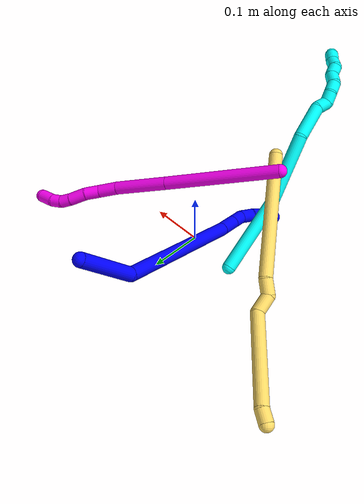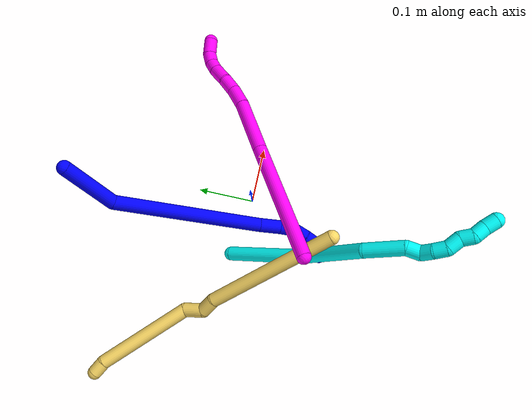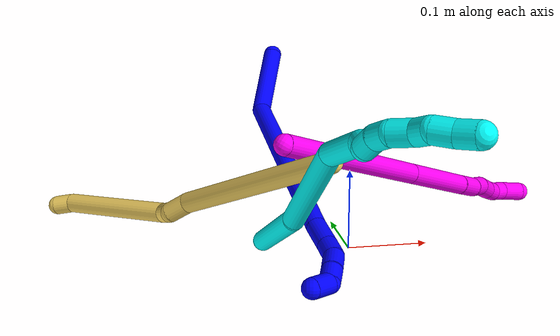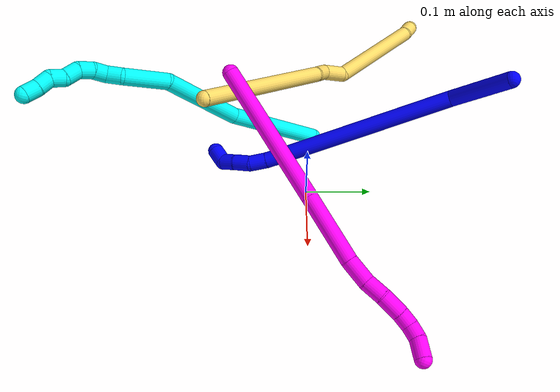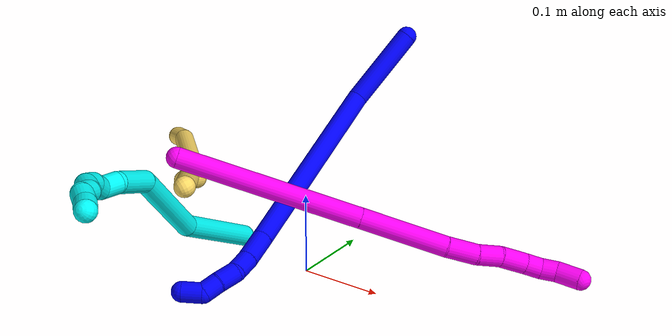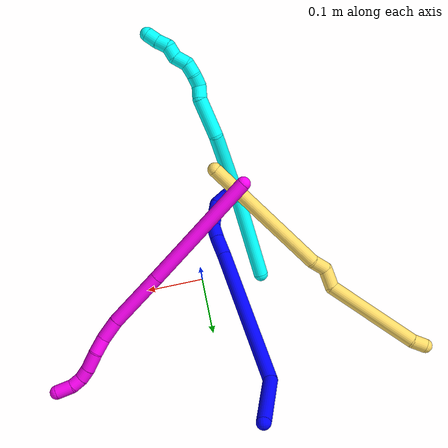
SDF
<sdf version="1.7">
 <world name="default">
  <model name="photoneo_s_sensor">
   <static>1</static>
   <pose>0 0 2 1.57079 1.57079 3.14159</pose>
   <link name="link">
    <inertial><mass>0.1</mass></inertial>
    <sensor name="sensor" type="depth">
     <update_rate>30</update_rate>
     <camera>
      <horizontal_fov>1.22</horizontal_fov>
      <image><width>1920</width><height>1200</height><format>B8G8R8</format></image>
      <clip><near>0.1</near><far>4</far></clip>
      <depth_camera><output>points</output></depth_camera>
     </camera>
     <plugin name="camera_plugin" filename="libgazebo_ros_depth_camera.so">
      <baseline>0.2</baseline>
      <alwaysOn>1</alwaysOn>
      <updateRate>0.0</updateRate>
      <cameraName>camera_ir</cameraName>
      <imageTopicName>/camera/color/image_raw</imageTopicName>
      <cameraInfoTopicName>/camera/color/camera_info</cameraInfoTopicName>
      <depthImageTopicName>/camera/depth/image_raw</depthImageTopicName>
      <depthImageCameraInfoTopicName>/camera/depth/camera_info</depthImageCameraInfoTopicName>
      <pointCloudTopicName>/camera/depth/points</pointCloudTopicName>
      <frameName>fr_optical</frameName>
      <pointCloudCutoff>0.1</pointCloudCutoff>
      <pointCloudCutoffMax>2.0</pointCloudCutoffMax>
      <distortionK1>0</distortionK1>
      <distortionK2>0</distortionK2>
      <distortionK3>0</distortionK3>
      <distortionT1>0</distortionT1>
      <distortionT2>0</distortionT2>
      <CxPrime>0</CxPrime>
      <Cx>0</Cx>
      <Cy>0</Cy>
      <focalLength>0</focalLength>
      <hackBaseline>0</hackBaseline>
     </plugin>
    </sensor>
   </link>
  </model>
  <model name="bin">
   <static>1</static>
   <link name="bottom">
    <collision name="collision-bottom">
     <pose>0 0 -0.01 0 -0 0</pose>
     <geometry><box><size>0.8 0.6 0.02</size></box></geometry>
     <surface>
      <friction><ode><mu>100</mu><mu2>100</mu2></ode></friction>
      <contact><collide_bitmask>65535</collide_bitmask></contact>
     </surface>
    </collision>
   </link>
   <link name="west_wall">
    <collision name="collision-west_wall">
     <pose>-0.41 0 0.1 0 -0 0</pose>
     <geometry><box><size>0.02 0.6 0.2</size></box></geometry>
     <surface>
      <friction><ode><mu>100</mu><mu2>100</mu2></ode></friction>
      <contact><collide_bitmask>65535</collide_bitmask></contact>
     </surface>
    </collision>
   </link>
   <link name="east_wall">
    <collision name="collision-east_wall">
     <pose>0.41 0 0.1 0 -0 0</pose>
     <geometry><box><size>0.02 0.6 0.2</size></box></geometry>
     <surface>
      <friction><ode><mu>100</mu><mu2>100</mu2></ode></friction>
      <contact><collide_bitmask>65535</collide_bitmask></contact>
     </surface>
    </collision>
   </link>
   <link name="south_wall">
    <collision name="collision-south_wall">
     <pose>0 -0.31 0.1 0 -0 0</pose>
     <geometry><box><size>0.8 0.02 0.2</size></box></geometry>
     <surface>
      <friction><ode><mu>100</mu><mu2>100</mu2></ode></friction>
      <contact><collide_bitmask>65535</collide_bitmask></contact>
     </surface>
    </collision>
   </link>
   <link name="north_wall">
    <collision name="collision-north_wall">
     <pose>0 0.31 0.1 0 -0 0</pose>
     <geometry><box><size>0.8 0.02 0.2</size></box></geometry>
     <surface>
      <friction><ode><mu>100</mu><mu2>100</mu2></ode></friction>
      <contact><collide_bitmask>65535</collide_bitmask></contact>
     </surface>
    </collision>
   </link>
  </model>
  <model name="1">
   <static>0</static>
   <link name="1">
    <collision name="collision-cylinder-e_1_1_4">
     <pose>0.016043 -0.047794 -0.00808 1.73828 0.319622 0.376921</pose>
     <geometry><cylinder><radius>0.0125</radius><length>0.102115</length></cylinder></geometry>
     <surface>
      <friction><ode><mu>1.16</mu><mu2>1.16</mu2><slip1>0</slip1><slip2>0</slip2></ode></friction>
      <contact><ode><kp>1e+06</kp><kd>1</kd><max_vel>0</max_vel><min_depth>0.001</min_depth></ode></contact>
     </surface>
    </collision>
    <visual name="visual-cylinder-e_1_1_4">
     <pose>0.016043 -0.047794 -0.00808 1.73828 0.319622 0.376921</pose>
     <geometry><cylinder><radius>0.0125</radius><length>0.102115</length></cylinder></geometry>
     <material><ambient>0 0 1 1</ambient></material>
    </visual>
    <collision name="collision-cylinder-e_2_4_5">
     <pose>0.022549 -0.22218 0.013953 1.33726 -0.073152 -0.057802</pose>
     <geometry><cylinder><radius>0.0125</radius><length>0.260949</length></cylinder></geometry>
     <surface>
      <friction><ode><mu>1.16</mu><mu2>1.16</mu2><slip1>0</slip1><slip2>0</slip2></ode></friction>
      <contact><ode><kp>1e+06</kp><kd>1</kd><max_vel>0</max_vel><min_depth>0.001</min_depth></ode></contact>
     </surface>
    </collision>
    <visual name="visual-cylinder-e_2_4_5">
     <pose>0.022549 -0.22218 0.013953 1.33726 -0.073152 -0.057802</pose>
     <geometry><cylinder><radius>0.0125</radius><length>0.260949</length></cylinder></geometry>
     <material><ambient>0 0 1 1</ambient></material>
    </visual>
    <collision name="collision-cylinder-e_3_5_6">
     <pose>0.010243 -0.367124 0.049175 1.29935 -0.144421 -0.109796</pose>
     <geometry><cylinder><radius>0.0125</radius><length>0.038497</length></cylinder></geometry>
     <surface>
      <friction><ode><mu>1.16</mu><mu2>1.16</mu2><slip1>0</slip1><slip2>0</slip2></ode></friction>
      <contact><ode><kp>1e+06</kp><kd>1</kd><max_vel>0</max_vel><min_depth>0.001</min_depth></ode></contact>
     </surface>
    </collision>
    <visual name="visual-cylinder-e_3_5_6">
     <pose>0.010243 -0.367124 0.049175 1.29935 -0.144421 -0.109796</pose>
     <geometry><cylinder><radius>0.0125</radius><length>0.038497</length></cylinder></geometry>
     <material><ambient>0 0 1 1</ambient></material>
    </visual>
    <collision name="collision-cylinder-e_4_6_7">
     <pose>0.004429 -0.397647 0.05681 1.36604 -0.240098 -0.195678</pose>
     <geometry><cylinder><radius>0.0125</radius><length>0.025599</length></cylinder></geometry>
     <surface>
      <friction><ode><mu>1.16</mu><mu2>1.16</mu2><slip1>0</slip1><slip2>0</slip2></ode></friction>
      <contact><ode><kp>1e+06</kp><kd>1</kd><max_vel>0</max_vel><min_depth>0.001</min_depth></ode></contact>
     </surface>
    </collision>
    <visual name="visual-cylinder-e_4_6_7">
     <pose>0.004429 -0.397647 0.05681 1.36604 -0.240098 -0.195678</pose>
     <geometry><cylinder><radius>0.0125</radius><length>0.025599</length></cylinder></geometry>
     <material><ambient>0 0 1 1</ambient></material>
    </visual>
    <collision name="collision-cylinder-e_5_7_8">
     <pose>-0.000951 -0.422441 0.057045 1.75047 -0.180169 -0.215588</pose>
     <geometry><cylinder><radius>0.0125</radius><length>0.026078</length></cylinder></geometry>
     <surface>
      <friction><ode><mu>1.16</mu><mu2>1.16</mu2><slip1>0</slip1><slip2>0</slip2></ode></friction>
      <contact><ode><kp>1e+06</kp><kd>1</kd><max_vel>0</max_vel><min_depth>0.001</min_depth></ode></contact>
     </surface>
    </collision>
    <visual name="visual-cylinder-e_5_7_8">
     <pose>-0.000951 -0.422441 0.057045 1.75047 -0.180169 -0.215588</pose>
     <geometry><cylinder><radius>0.0125</radius><length>0.026078</length></cylinder></geometry>
     <material><ambient>0 0 1 1</ambient></material>
    </visual>
    <collision name="collision-cylinder-e_6_8_9">
     <pose>-0.003954 -0.445687 0.052511 1.7788 -0.061329 -0.075612</pose>
     <geometry><cylinder><radius>0.0125</radius><length>0.021758</length></cylinder></geometry>
     <surface>
      <friction><ode><mu>1.16</mu><mu2>1.16</mu2><slip1>0</slip1><slip2>0</slip2></ode></friction>
      <contact><ode><kp>1e+06</kp><kd>1</kd><max_vel>0</max_vel><min_depth>0.001</min_depth></ode></contact>
     </surface>
    </collision>
    <visual name="visual-cylinder-e_6_8_9">
     <pose>-0.003954 -0.445687 0.052511 1.7788 -0.061329 -0.075612</pose>
     <geometry><cylinder><radius>0.0125</radius><length>0.021758</length></cylinder></geometry>
     <material><ambient>0 0 1 1</ambient></material>
    </visual>
    <collision name="collision-cylinder-e_7_9_2">
     <pose>-0.007538 -0.463118 0.040195 2.54739 -0.2355 -0.737433</pose>
     <geometry><cylinder><radius>0.0125</radius><length>0.025003</length></cylinder></geometry>
     <surface>
      <friction><ode><mu>1.16</mu><mu2>1.16</mu2><slip1>0</slip1><slip2>0</slip2></ode></friction>
      <contact><ode><kp>1e+06</kp><kd>1</kd><max_vel>0</max_vel><min_depth>0.001</min_depth></ode></contact>
     </surface>
    </collision>
    <visual name="visual-cylinder-e_7_9_2">
     <pose>-0.007538 -0.463118 0.040195 2.54739 -0.2355 -0.737433</pose>
     <geometry><cylinder><radius>0.0125</radius><length>0.025003</length></cylinder></geometry>
     <material><ambient>0 0 1 1</ambient></material>
    </visual>
    <collision name="collision-sphere-2">
     <pose>-0.010455 -0.469924 0.030122 0 -0 0</pose>
     <geometry><sphere><radius>0.0125</radius></sphere></geometry>
     <surface>
      <friction><ode><mu>1.16</mu><mu2>1.16</mu2><slip1>0</slip1><slip2>0</slip2></ode></friction>
      <contact><ode><kp>1e+06</kp><kd>1</kd><max_vel>0</max_vel><min_depth>0.001</min_depth></ode></contact>
     </surface>
    </collision>
    <visual name="visual-sphere-2">
     <pose>-0.010455 -0.469924 0.030122 0 -0 0</pose>
     <geometry><sphere><radius>0.0125</radius></sphere></geometry>
     <material><ambient>0 0 1 1</ambient></material>
    </visual>
    <collision name="collision-sphere-9">
     <pose>-0.004621 -0.456312 0.050268 0 -0 0</pose>
     <geometry><sphere><radius>0.0125</radius></sphere></geometry>
     <surface>
      <friction><ode><mu>1.16</mu><mu2>1.16</mu2><slip1>0</slip1><slip2>0</slip2></ode></friction>
      <contact><ode><kp>1e+06</kp><kd>1</kd><max_vel>0</max_vel><min_depth>0.001</min_depth></ode></contact>
     </surface>
    </collision>
    <visual name="visual-sphere-9">
     <pose>-0.004621 -0.456312 0.050268 0 -0 0</pose>
     <geometry><sphere><radius>0.0125</radius></sphere></geometry>
     <material><ambient>0 0 1 1</ambient></material>
    </visual>
    <collision name="collision-sphere-4">
     <pose>0.032085 -0.095587 -0.016161 0 -0 0</pose>
     <geometry><sphere><radius>0.0125</radius></sphere></geometry>
     <surface>
      <friction><ode><mu>1.16</mu><mu2>1.16</mu2><slip1>0</slip1><slip2>0</slip2></ode></friction>
      <contact><ode><kp>1e+06</kp><kd>1</kd><max_vel>0</max_vel><min_depth>0.001</min_depth></ode></contact>
     </surface>
    </collision>
    <visual name="visual-sphere-4">
     <pose>0.032085 -0.095587 -0.016161 0 -0 0</pose>
     <geometry><sphere><radius>0.0125</radius></sphere></geometry>
     <material><ambient>0 0 1 1</ambient></material>
    </visual>
    <collision name="collision-sphere-1">
     <geometry><sphere><radius>0.0125</radius></sphere></geometry>
     <surface>
      <friction><ode><mu>1.16</mu><mu2>1.16</mu2><slip1>0</slip1><slip2>0</slip2></ode></friction>
      <contact><ode><kp>1e+06</kp><kd>1</kd><max_vel>0</max_vel><min_depth>0.001</min_depth></ode></contact>
     </surface>
    </collision>
    <visual name="visual-sphere-1">
     <geometry><sphere><radius>0.0125</radius></sphere></geometry>
     <material><ambient>0 0 1 1</ambient></material>
    </visual>
    <collision name="collision-sphere-8">
     <pose>-0.003287 -0.435063 0.054753 0 -0 0</pose>
     <geometry><sphere><radius>0.0125</radius></sphere></geometry>
     <surface>
      <friction><ode><mu>1.16</mu><mu2>1.16</mu2><slip1>0</slip1><slip2>0</slip2></ode></friction>
      <contact><ode><kp>1e+06</kp><kd>1</kd><max_vel>0</max_vel><min_depth>0.001</min_depth></ode></contact>
     </surface>
    </collision>
    <visual name="visual-sphere-8">
     <pose>-0.003287 -0.435063 0.054753 0 -0 0</pose>
     <geometry><sphere><radius>0.0125</radius></sphere></geometry>
     <material><ambient>0 0 1 1</ambient></material>
    </visual>
    <collision name="collision-sphere-5">
     <pose>0.013013 -0.348773 0.044068 0 -0 0</pose>
     <geometry><sphere><radius>0.0125</radius></sphere></geometry>
     <surface>
      <friction><ode><mu>1.16</mu><mu2>1.16</mu2><slip1>0</slip1><slip2>0</slip2></ode></friction>
      <contact><ode><kp>1e+06</kp><kd>1</kd><max_vel>0</max_vel><min_depth>0.001</min_depth></ode></contact>
     </surface>
    </collision>
    <visual name="visual-sphere-5">
     <pose>0.013013 -0.348773 0.044068 0 -0 0</pose>
     <geometry><sphere><radius>0.0125</radius></sphere></geometry>
     <material><ambient>0 0 1 1</ambient></material>
    </visual>
    <collision name="collision-sphere-6">
     <pose>0.007473 -0.385475 0.054282 0 -0 0</pose>
     <geometry><sphere><radius>0.0125</radius></sphere></geometry>
     <surface>
      <friction><ode><mu>1.16</mu><mu2>1.16</mu2><slip1>0</slip1><slip2>0</slip2></ode></friction>
      <contact><ode><kp>1e+06</kp><kd>1</kd><max_vel>0</max_vel><min_depth>0.001</min_depth></ode></contact>
     </surface>
    </collision>
    <visual name="visual-sphere-6">
     <pose>0.007473 -0.385475 0.054282 0 -0 0</pose>
     <geometry><sphere><radius>0.0125</radius></sphere></geometry>
     <material><ambient>0 0 1 1</ambient></material>
    </visual>
    <collision name="collision-sphere-7">
     <pose>0.001386 -0.40982 0.059338 0 -0 0</pose>
     <geometry><sphere><radius>0.0125</radius></sphere></geometry>
     <surface>
      <friction><ode><mu>1.16</mu><mu2>1.16</mu2><slip1>0</slip1><slip2>0</slip2></ode></friction>
      <contact><ode><kp>1e+06</kp><kd>1</kd><max_vel>0</max_vel><min_depth>0.001</min_depth></ode></contact>
     </surface>
    </collision>
    <visual name="visual-sphere-7">
     <pose>0.001386 -0.40982 0.059338 0 -0 0</pose>
     <geometry><sphere><radius>0.0125</radius></sphere></geometry>
     <material><ambient>0 0 1 1</ambient></material>
    </visual>
    <inertial>
     <pose>0.015462 -0.238928 0.019597 0 -0 0</pose>
     <mass>0.5</mass>
     <inertia>
      <ixx>0.001523</ixx>
      <ixy>0</ixy>
      <ixz>0</ixz>
      <iyy>0.000254</iyy>
      <iyz>0</iyz>
      <izz>0.001632</izz>
     </inertia>
    </inertial>
   </link>
   <pose>-0.047521 0.288523 0.199749 1.70038 1.1381 1.57814</pose>
  </model>
  <model name="3">
   <static>0</static>
   <link name="3">
    <collision name="collision-cylinder-e_1_1_4">
     <pose>0.001 -0.001209 0.072323 0.016713 0.01383 0.000116</pose>
     <geometry><cylinder><radius>0.0125</radius><length>0.144679</length></cylinder></geometry>
     <surface>
      <friction><ode><mu>1.16</mu><mu2>1.16</mu2><slip1>0</slip1><slip2>0</slip2></ode></friction>
      <contact><ode><kp>1e+06</kp><kd>1</kd><max_vel>0</max_vel><min_depth>0.001</min_depth></ode></contact>
     </surface>
    </collision>
    <visual name="visual-cylinder-e_1_1_4">
     <pose>0.001 -0.001209 0.072323 0.016713 0.01383 0.000116</pose>
     <geometry><cylinder><radius>0.0125</radius><length>0.144679</length></cylinder></geometry>
     <material><ambient>0.003922 1 0.996078 1</ambient></material>
    </visual>
    <collision name="collision-cylinder-e_2_4_5">
     <pose>-0.012979 -0.016748 0.208598 0.220437 -0.224708 -0.024972</pose>
     <geometry><cylinder><radius>0.0125</radius><length>0.134458</length></cylinder></geometry>
     <surface>
      <friction><ode><mu>1.16</mu><mu2>1.16</mu2><slip1>0</slip1><slip2>0</slip2></ode></friction>
      <contact><ode><kp>1e+06</kp><kd>1</kd><max_vel>0</max_vel><min_depth>0.001</min_depth></ode></contact>
     </surface>
    </collision>
    <visual name="visual-cylinder-e_2_4_5">
     <pose>-0.012979 -0.016748 0.208598 0.220437 -0.224708 -0.024972</pose>
     <geometry><cylinder><radius>0.0125</radius><length>0.134458</length></cylinder></geometry>
     <material><ambient>0.003922 1 0.996078 1</ambient></material>
    </visual>
    <collision name="collision-cylinder-e_3_5_6">
     <pose>-0.028288 -0.026613 0.306045 -0.13255 -0.009727 0.000646</pose>
     <geometry><cylinder><radius>0.0125</radius><length>0.067584</length></cylinder></geometry>
     <surface>
      <friction><ode><mu>1.16</mu><mu2>1.16</mu2><slip1>0</slip1><slip2>0</slip2></ode></friction>
      <contact><ode><kp>1e+06</kp><kd>1</kd><max_vel>0</max_vel><min_depth>0.001</min_depth></ode></contact>
     </surface>
    </collision>
    <visual name="visual-cylinder-e_3_5_6">
     <pose>-0.028288 -0.026613 0.306045 -0.13255 -0.009727 0.000646</pose>
     <geometry><cylinder><radius>0.0125</radius><length>0.067584</length></cylinder></geometry>
     <material><ambient>0.003922 1 0.996078 1</ambient></material>
    </visual>
    <collision name="collision-cylinder-e_4_6_7">
     <pose>-0.023054 -0.020326 0.349982 -0.172626 0.48331 -0.042647</pose>
     <geometry><cylinder><radius>0.0125</radius><length>0.023942</length></cylinder></geometry>
     <surface>
      <friction><ode><mu>1.16</mu><mu2>1.16</mu2><slip1>0</slip1><slip2>0</slip2></ode></friction>
      <contact><ode><kp>1e+06</kp><kd>1</kd><max_vel>0</max_vel><min_depth>0.001</min_depth></ode></contact>
     </surface>
    </collision>
    <visual name="visual-cylinder-e_4_6_7">
     <pose>-0.023054 -0.020326 0.349982 -0.172626 0.48331 -0.042647</pose>
     <geometry><cylinder><radius>0.0125</radius><length>0.023942</length></cylinder></geometry>
     <material><ambient>0.003922 1 0.996078 1</ambient></material>
    </visual>
    <collision name="collision-cylinder-e_5_7_8">
     <pose>-0.019734 -0.019025 0.370862 0.049718 -0.211426 -0.005277</pose>
     <geometry><cylinder><radius>0.0125</radius><length>0.021378</length></cylinder></geometry>
     <surface>
      <friction><ode><mu>1.16</mu><mu2>1.16</mu2><slip1>0</slip1><slip2>0</slip2></ode></friction>
      <contact><ode><kp>1e+06</kp><kd>1</kd><max_vel>0</max_vel><min_depth>0.001</min_depth></ode></contact>
     </surface>
    </collision>
    <visual name="visual-cylinder-e_5_7_8">
     <pose>-0.019734 -0.019025 0.370862 0.049718 -0.211426 -0.005277</pose>
     <geometry><cylinder><radius>0.0125</radius><length>0.021378</length></cylinder></geometry>
     <material><ambient>0.003922 1 0.996078 1</ambient></material>
    </visual>
    <collision name="collision-cylinder-e_6_8_9">
     <pose>-0.0232 -0.017209 0.391645 -0.22203 -0.114856 0.012817</pose>
     <geometry><cylinder><radius>0.0125</radius><length>0.02135</length></cylinder></geometry>
     <surface>
      <friction><ode><mu>1.16</mu><mu2>1.16</mu2><slip1>0</slip1><slip2>0</slip2></ode></friction>
      <contact><ode><kp>1e+06</kp><kd>1</kd><max_vel>0</max_vel><min_depth>0.001</min_depth></ode></contact>
     </surface>
    </collision>
    <visual name="visual-cylinder-e_6_8_9">
     <pose>-0.0232 -0.017209 0.391645 -0.22203 -0.114856 0.012817</pose>
     <geometry><cylinder><radius>0.0125</radius><length>0.02135</length></cylinder></geometry>
     <material><ambient>0.003922 1 0.996078 1</ambient></material>
    </visual>
    <collision name="collision-cylinder-e_7_9_10">
     <pose>-0.029023 -0.008017 0.410376 -0.68537 -0.401537 0.144955</pose>
     <geometry><cylinder><radius>0.0125</radius><length>0.023538</length></cylinder></geometry>
     <surface>
      <friction><ode><mu>1.16</mu><mu2>1.16</mu2><slip1>0</slip1><slip2>0</slip2></ode></friction>
      <contact><ode><kp>1e+06</kp><kd>1</kd><max_vel>0</max_vel><min_depth>0.001</min_depth></ode></contact>
     </surface>
    </collision>
    <visual name="visual-cylinder-e_7_9_10">
     <pose>-0.029023 -0.008017 0.410376 -0.68537 -0.401537 0.144955</pose>
     <geometry><cylinder><radius>0.0125</radius><length>0.023538</length></cylinder></geometry>
     <material><ambient>0.003922 1 0.996078 1</ambient></material>
    </visual>
    <collision name="collision-cylinder-e_8_10_11">
     <pose>-0.034289 0.001543 0.428608 -0.267935 -0.065148 0.008783</pose>
     <geometry><cylinder><radius>0.0125</radius><length>0.020462</length></cylinder></geometry>
     <surface>
      <friction><ode><mu>1.16</mu><mu2>1.16</mu2><slip1>0</slip1><slip2>0</slip2></ode></friction>
      <contact><ode><kp>1e+06</kp><kd>1</kd><max_vel>0</max_vel><min_depth>0.001</min_depth></ode></contact>
     </surface>
    </collision>
    <visual name="visual-cylinder-e_8_10_11">
     <pose>-0.034289 0.001543 0.428608 -0.267935 -0.065148 0.008783</pose>
     <geometry><cylinder><radius>0.0125</radius><length>0.020462</length></cylinder></geometry>
     <material><ambient>0.003922 1 0.996078 1</ambient></material>
    </visual>
    <collision name="collision-cylinder-e_9_11_12">
     <pose>-0.038225 0.011855 0.445215 -0.844191 -0.3108 0.14048</pose>
     <geometry><cylinder><radius>0.0125</radius><length>0.021384</length></cylinder></geometry>
     <surface>
      <friction><ode><mu>1.16</mu><mu2>1.16</mu2><slip1>0</slip1><slip2>0</slip2></ode></friction>
      <contact><ode><kp>1e+06</kp><kd>1</kd><max_vel>0</max_vel><min_depth>0.001</min_depth></ode></contact>
     </surface>
    </collision>
    <visual name="visual-cylinder-e_9_11_12">
     <pose>-0.038225 0.011855 0.445215 -0.844191 -0.3108 0.14048</pose>
     <geometry><cylinder><radius>0.0125</radius><length>0.021384</length></cylinder></geometry>
     <material><ambient>0.003922 1 0.996078 1</ambient></material>
    </visual>
    <collision name="collision-cylinder-e_10_12_2">
     <pose>-0.044373 0.025764 0.460017 -0.664767 -0.274641 0.095331</pose>
     <geometry><cylinder><radius>0.0125</radius><length>0.021224</length></cylinder></geometry>
     <surface>
      <friction><ode><mu>1.16</mu><mu2>1.16</mu2><slip1>0</slip1><slip2>0</slip2></ode></friction>
      <contact><ode><kp>1e+06</kp><kd>1</kd><max_vel>0</max_vel><min_depth>0.001</min_depth></ode></contact>
     </surface>
    </collision>
    <visual name="visual-cylinder-e_10_12_2">
     <pose>-0.044373 0.025764 0.460017 -0.664767 -0.274641 0.095331</pose>
     <geometry><cylinder><radius>0.0125</radius><length>0.021224</length></cylinder></geometry>
     <material><ambient>0.003922 1 0.996078 1</ambient></material>
    </visual>
    <collision name="collision-sphere-2">
     <pose>-0.047251 0.032065 0.468057 0 -0 0</pose>
     <geometry><sphere><radius>0.0125</radius></sphere></geometry>
     <surface>
      <friction><ode><mu>1.16</mu><mu2>1.16</mu2><slip1>0</slip1><slip2>0</slip2></ode></friction>
      <contact><ode><kp>1e+06</kp><kd>1</kd><max_vel>0</max_vel><min_depth>0.001</min_depth></ode></contact>
     </surface>
    </collision>
    <visual name="visual-sphere-2">
     <pose>-0.047251 0.032065 0.468057 0 -0 0</pose>
     <geometry><sphere><radius>0.0125</radius></sphere></geometry>
     <material><ambient>0.003922 1 0.996078 1</ambient></material>
    </visual>
    <collision name="collision-sphere-12">
     <pose>-0.041495 0.019463 0.451978 0 -0 0</pose>
     <geometry><sphere><radius>0.0125</radius></sphere></geometry>
     <surface>
      <friction><ode><mu>1.16</mu><mu2>1.16</mu2><slip1>0</slip1><slip2>0</slip2></ode></friction>
      <contact><ode><kp>1e+06</kp><kd>1</kd><max_vel>0</max_vel><min_depth>0.001</min_depth></ode></contact>
     </surface>
    </collision>
    <visual name="visual-sphere-12">
     <pose>-0.041495 0.019463 0.451978 0 -0 0</pose>
     <geometry><sphere><radius>0.0125</radius></sphere></geometry>
     <material><ambient>0.003922 1 0.996078 1</ambient></material>
    </visual>
    <collision name="collision-sphere-11">
     <pose>-0.034955 0.004246 0.438452 0 -0 0</pose>
     <geometry><sphere><radius>0.0125</radius></sphere></geometry>
     <surface>
      <friction><ode><mu>1.16</mu><mu2>1.16</mu2><slip1>0</slip1><slip2>0</slip2></ode></friction>
      <contact><ode><kp>1e+06</kp><kd>1</kd><max_vel>0</max_vel><min_depth>0.001</min_depth></ode></contact>
     </surface>
    </collision>
    <visual name="visual-sphere-11">
     <pose>-0.034955 0.004246 0.438452 0 -0 0</pose>
     <geometry><sphere><radius>0.0125</radius></sphere></geometry>
     <material><ambient>0.003922 1 0.996078 1</ambient></material>
    </visual>
    <collision name="collision-sphere-10">
     <pose>-0.033623 -0.00116 0.418763 0 -0 0</pose>
     <geometry><sphere><radius>0.0125</radius></sphere></geometry>
     <surface>
      <friction><ode><mu>1.16</mu><mu2>1.16</mu2><slip1>0</slip1><slip2>0</slip2></ode></friction>
      <contact><ode><kp>1e+06</kp><kd>1</kd><max_vel>0</max_vel><min_depth>0.001</min_depth></ode></contact>
     </surface>
    </collision>
    <visual name="visual-sphere-10">
     <pose>-0.033623 -0.00116 0.418763 0 -0 0</pose>
     <geometry><sphere><radius>0.0125</radius></sphere></geometry>
     <material><ambient>0.003922 1 0.996078 1</ambient></material>
    </visual>
    <collision name="collision-sphere-9">
     <pose>-0.024424 -0.014874 0.401989 0 -0 0</pose>
     <geometry><sphere><radius>0.0125</radius></sphere></geometry>
     <surface>
      <friction><ode><mu>1.16</mu><mu2>1.16</mu2><slip1>0</slip1><slip2>0</slip2></ode></friction>
      <contact><ode><kp>1e+06</kp><kd>1</kd><max_vel>0</max_vel><min_depth>0.001</min_depth></ode></contact>
     </surface>
    </collision>
    <visual name="visual-sphere-9">
     <pose>-0.024424 -0.014874 0.401989 0 -0 0</pose>
     <geometry><sphere><radius>0.0125</radius></sphere></geometry>
     <material><ambient>0.003922 1 0.996078 1</ambient></material>
    </visual>
    <collision name="collision-sphere-4">
     <pose>0.002001 -0.002418 0.144645 0 -0 0</pose>
     <geometry><sphere><radius>0.0125</radius></sphere></geometry>
     <surface>
      <friction><ode><mu>1.16</mu><mu2>1.16</mu2><slip1>0</slip1><slip2>0</slip2></ode></friction>
      <contact><ode><kp>1e+06</kp><kd>1</kd><max_vel>0</max_vel><min_depth>0.001</min_depth></ode></contact>
     </surface>
    </collision>
    <visual name="visual-sphere-4">
     <pose>0.002001 -0.002418 0.144645 0 -0 0</pose>
     <geometry><sphere><radius>0.0125</radius></sphere></geometry>
     <material><ambient>0.003922 1 0.996078 1</ambient></material>
    </visual>
    <collision name="collision-sphere-1">
     <geometry><sphere><radius>0.0125</radius></sphere></geometry>
     <surface>
      <friction><ode><mu>1.16</mu><mu2>1.16</mu2><slip1>0</slip1><slip2>0</slip2></ode></friction>
      <contact><ode><kp>1e+06</kp><kd>1</kd><max_vel>0</max_vel><min_depth>0.001</min_depth></ode></contact>
     </surface>
    </collision>
    <visual name="visual-sphere-1">
     <geometry><sphere><radius>0.0125</radius></sphere></geometry>
     <material><ambient>0.003922 1 0.996078 1</ambient></material>
    </visual>
    <collision name="collision-sphere-8">
     <pose>-0.021977 -0.019544 0.3813 0 -0 0</pose>
     <geometry><sphere><radius>0.0125</radius></sphere></geometry>
     <surface>
      <friction><ode><mu>1.16</mu><mu2>1.16</mu2><slip1>0</slip1><slip2>0</slip2></ode></friction>
      <contact><ode><kp>1e+06</kp><kd>1</kd><max_vel>0</max_vel><min_depth>0.001</min_depth></ode></contact>
     </surface>
    </collision>
    <visual name="visual-sphere-8">
     <pose>-0.021977 -0.019544 0.3813 0 -0 0</pose>
     <geometry><sphere><radius>0.0125</radius></sphere></geometry>
     <material><ambient>0.003922 1 0.996078 1</ambient></material>
    </visual>
    <collision name="collision-sphere-5">
     <pose>-0.027959 -0.031079 0.272551 0 -0 0</pose>
     <geometry><sphere><radius>0.0125</radius></sphere></geometry>
     <surface>
      <friction><ode><mu>1.16</mu><mu2>1.16</mu2><slip1>0</slip1><slip2>0</slip2></ode></friction>
      <contact><ode><kp>1e+06</kp><kd>1</kd><max_vel>0</max_vel><min_depth>0.001</min_depth></ode></contact>
     </surface>
    </collision>
    <visual name="visual-sphere-5">
     <pose>-0.027959 -0.031079 0.272551 0 -0 0</pose>
     <geometry><sphere><radius>0.0125</radius></sphere></geometry>
     <material><ambient>0.003922 1 0.996078 1</ambient></material>
    </visual>
    <collision name="collision-sphere-6">
     <pose>-0.028617 -0.022147 0.339539 0 -0 0</pose>
     <geometry><sphere><radius>0.0125</radius></sphere></geometry>
     <surface>
      <friction><ode><mu>1.16</mu><mu2>1.16</mu2><slip1>0</slip1><slip2>0</slip2></ode></friction>
      <contact><ode><kp>1e+06</kp><kd>1</kd><max_vel>0</max_vel><min_depth>0.001</min_depth></ode></contact>
     </surface>
    </collision>
    <visual name="visual-sphere-6">
     <pose>-0.028617 -0.022147 0.339539 0 -0 0</pose>
     <geometry><sphere><radius>0.0125</radius></sphere></geometry>
     <material><ambient>0.003922 1 0.996078 1</ambient></material>
    </visual>
    <collision name="collision-sphere-7">
     <pose>-0.017491 -0.018505 0.360424 0 -0 0</pose>
     <geometry><sphere><radius>0.0125</radius></sphere></geometry>
     <surface>
      <friction><ode><mu>1.16</mu><mu2>1.16</mu2><slip1>0</slip1><slip2>0</slip2></ode></friction>
      <contact><ode><kp>1e+06</kp><kd>1</kd><max_vel>0</max_vel><min_depth>0.001</min_depth></ode></contact>
     </surface>
    </collision>
    <visual name="visual-sphere-7">
     <pose>-0.017491 -0.018505 0.360424 0 -0 0</pose>
     <geometry><sphere><radius>0.0125</radius></sphere></geometry>
     <material><ambient>0.003922 1 0.996078 1</ambient></material>
    </visual>
    <inertial>
     <pose>-0.016251 -0.009686 0.243156 0 -0 0</pose>
     <mass>0.5</mass>
     <inertia>
      <ixx>0.000492</ixx>
      <ixy>0</ixy>
      <ixz>0</ixz>
      <iyy>0.000498</iyy>
      <iyz>0</iyz>
      <izz>0.000122</izz>
     </inertia>
    </inertial>
   </link>
   <pose>-0.104925 0.014747 0.011486 -0.973569 0.563731 -2.65232</pose>
  </model>
  <model name="5">
   <static>0</static>
   <link name="5">
    <collision name="collision-cylinder-e_1_1_4">
     <pose>-0.084313 0.081002 -0.024882 -1.86882 -0.782886 1.01879</pose>
     <geometry><cylinder><radius>0.0125</radius><length>0.239074</length></cylinder></geometry>
     <surface>
      <friction><ode><mu>1.16</mu><mu2>1.16</mu2><slip1>0</slip1><slip2>0</slip2></ode></friction>
      <contact><ode><kp>1e+06</kp><kd>1</kd><max_vel>0</max_vel><min_depth>0.001</min_depth></ode></contact>
     </surface>
    </collision>
    <visual name="visual-cylinder-e_1_1_4">
     <pose>-0.084313 0.081002 -0.024882 -1.86882 -0.782886 1.01879</pose>
     <geometry><cylinder><radius>0.0125</radius><length>0.239074</length></cylinder></geometry>
     <material><ambient>1 0.858824 0.4 1</ambient></material>
    </visual>
    <collision name="collision-cylinder-e_2_4_5">
     <pose>-0.18003 0.171738 -0.048488 -1.44042 -0.860071 0.765231</pose>
     <geometry><cylinder><radius>0.0125</radius><length>0.030096</length></cylinder></geometry>
     <surface>
      <friction><ode><mu>1.16</mu><mu2>1.16</mu2><slip1>0</slip1><slip2>0</slip2></ode></friction>
      <contact><ode><kp>1e+06</kp><kd>1</kd><max_vel>0</max_vel><min_depth>0.001</min_depth></ode></contact>
     </surface>
    </collision>
    <visual name="visual-cylinder-e_2_4_5">
     <pose>-0.18003 0.171738 -0.048488 -1.44042 -0.860071 0.765231</pose>
     <geometry><cylinder><radius>0.0125</radius><length>0.030096</length></cylinder></geometry>
     <material><ambient>1 0.858824 0.4 1</ambient></material>
    </visual>
    <collision name="collision-cylinder-e_3_5_6">
     <pose>-0.203483 0.188638 -0.057568 -2.53632 -0.763231 1.81914</pose>
     <geometry><cylinder><radius>0.0125</radius><length>0.034858</length></cylinder></geometry>
     <surface>
      <friction><ode><mu>1.16</mu><mu2>1.16</mu2><slip1>0</slip1><slip2>0</slip2></ode></friction>
      <contact><ode><kp>1e+06</kp><kd>1</kd><max_vel>0</max_vel><min_depth>0.001</min_depth></ode></contact>
     </surface>
    </collision>
    <visual name="visual-cylinder-e_3_5_6">
     <pose>-0.203483 0.188638 -0.057568 -2.53632 -0.763231 1.81914</pose>
     <geometry><cylinder><radius>0.0125</radius><length>0.034858</length></cylinder></geometry>
     <material><ambient>1 0.858824 0.4 1</ambient></material>
    </visual>
    <collision name="collision-cylinder-e_4_6_7">
     <pose>-0.255235 0.268998 -0.087076 -1.8267 -0.483278 0.618016</pose>
     <geometry><cylinder><radius>0.0125</radius><length>0.170888</length></cylinder></geometry>
     <surface>
      <friction><ode><mu>1.16</mu><mu2>1.16</mu2><slip1>0</slip1><slip2>0</slip2></ode></friction>
      <contact><ode><kp>1e+06</kp><kd>1</kd><max_vel>0</max_vel><min_depth>0.001</min_depth></ode></contact>
     </surface>
    </collision>
    <visual name="visual-cylinder-e_4_6_7">
     <pose>-0.255235 0.268998 -0.087076 -1.8267 -0.483278 0.618016</pose>
     <geometry><cylinder><radius>0.0125</radius><length>0.170888</length></cylinder></geometry>
     <material><ambient>1 0.858824 0.4 1</ambient></material>
    </visual>
    <collision name="collision-cylinder-e_5_7_2">
     <pose>-0.301229 0.353016 -0.105441 -1.49832 -0.525299 0.490049</pose>
     <geometry><cylinder><radius>0.0125</radius><length>0.025084</length></cylinder></geometry>
     <surface>
      <friction><ode><mu>1.16</mu><mu2>1.16</mu2><slip1>0</slip1><slip2>0</slip2></ode></friction>
      <contact><ode><kp>1e+06</kp><kd>1</kd><max_vel>0</max_vel><min_depth>0.001</min_depth></ode></contact>
     </surface>
    </collision>
    <visual name="visual-cylinder-e_5_7_2">
     <pose>-0.301229 0.353016 -0.105441 -1.49832 -0.525299 0.490049</pose>
     <geometry><cylinder><radius>0.0125</radius><length>0.025084</length></cylinder></geometry>
     <material><ambient>1 0.858824 0.4 1</ambient></material>
    </visual>
    <collision name="collision-sphere-2">
     <pose>-0.307519 0.363838 -0.104655 0 -0 0</pose>
     <geometry><sphere><radius>0.0125</radius></sphere></geometry>
     <surface>
      <friction><ode><mu>1.16</mu><mu2>1.16</mu2><slip1>0</slip1><slip2>0</slip2></ode></friction>
      <contact><ode><kp>1e+06</kp><kd>1</kd><max_vel>0</max_vel><min_depth>0.001</min_depth></ode></contact>
     </surface>
    </collision>
    <visual name="visual-sphere-2">
     <pose>-0.307519 0.363838 -0.104655 0 -0 0</pose>
     <geometry><sphere><radius>0.0125</radius></sphere></geometry>
     <material><ambient>1 0.858824 0.4 1</ambient></material>
    </visual>
    <collision name="collision-sphere-7">
     <pose>-0.29494 0.342193 -0.106227 0 -0 0</pose>
     <geometry><sphere><radius>0.0125</radius></sphere></geometry>
     <surface>
      <friction><ode><mu>1.16</mu><mu2>1.16</mu2><slip1>0</slip1><slip2>0</slip2></ode></friction>
      <contact><ode><kp>1e+06</kp><kd>1</kd><max_vel>0</max_vel><min_depth>0.001</min_depth></ode></contact>
     </surface>
    </collision>
    <visual name="visual-sphere-7">
     <pose>-0.29494 0.342193 -0.106227 0 -0 0</pose>
     <geometry><sphere><radius>0.0125</radius></sphere></geometry>
     <material><ambient>1 0.858824 0.4 1</ambient></material>
    </visual>
    <collision name="collision-sphere-6">
     <pose>-0.215531 0.195803 -0.067925 0 -0 0</pose>
     <geometry><sphere><radius>0.0125</radius></sphere></geometry>
     <surface>
      <friction><ode><mu>1.16</mu><mu2>1.16</mu2><slip1>0</slip1><slip2>0</slip2></ode></friction>
      <contact><ode><kp>1e+06</kp><kd>1</kd><max_vel>0</max_vel><min_depth>0.001</min_depth></ode></contact>
     </surface>
    </collision>
    <visual name="visual-sphere-6">
     <pose>-0.215531 0.195803 -0.067925 0 -0 0</pose>
     <geometry><sphere><radius>0.0125</radius></sphere></geometry>
     <material><ambient>1 0.858824 0.4 1</ambient></material>
    </visual>
    <collision name="collision-sphere-5">
     <pose>-0.191435 0.181472 -0.047211 0 -0 0</pose>
     <geometry><sphere><radius>0.0125</radius></sphere></geometry>
     <surface>
      <friction><ode><mu>1.16</mu><mu2>1.16</mu2><slip1>0</slip1><slip2>0</slip2></ode></friction>
      <contact><ode><kp>1e+06</kp><kd>1</kd><max_vel>0</max_vel><min_depth>0.001</min_depth></ode></contact>
     </surface>
    </collision>
    <visual name="visual-sphere-5">
     <pose>-0.191435 0.181472 -0.047211 0 -0 0</pose>
     <geometry><sphere><radius>0.0125</radius></sphere></geometry>
     <material><ambient>1 0.858824 0.4 1</ambient></material>
    </visual>
    <collision name="collision-sphere-1">
     <geometry><sphere><radius>0.0125</radius></sphere></geometry>
     <surface>
      <friction><ode><mu>1.16</mu><mu2>1.16</mu2><slip1>0</slip1><slip2>0</slip2></ode></friction>
      <contact><ode><kp>1e+06</kp><kd>1</kd><max_vel>0</max_vel><min_depth>0.001</min_depth></ode></contact>
     </surface>
    </collision>
    <visual name="visual-sphere-1">
     <geometry><sphere><radius>0.0125</radius></sphere></geometry>
     <material><ambient>1 0.858824 0.4 1</ambient></material>
    </visual>
    <collision name="collision-sphere-4">
     <pose>-0.168626 0.162004 -0.049764 0 -0 0</pose>
     <geometry><sphere><radius>0.0125</radius></sphere></geometry>
     <surface>
      <friction><ode><mu>1.16</mu><mu2>1.16</mu2><slip1>0</slip1><slip2>0</slip2></ode></friction>
      <contact><ode><kp>1e+06</kp><kd>1</kd><max_vel>0</max_vel><min_depth>0.001</min_depth></ode></contact>
     </surface>
    </collision>
    <visual name="visual-sphere-4">
     <pose>-0.168626 0.162004 -0.049764 0 -0 0</pose>
     <geometry><sphere><radius>0.0125</radius></sphere></geometry>
     <material><ambient>1 0.858824 0.4 1</ambient></material>
    </visual>
    <inertial>
     <pose>-0.167682 0.171867 -0.05388 0 -0 0</pose>
     <mass>0.5</mass>
     <inertia>
      <ixx>0.001626</ixx>
      <ixy>0</ixy>
      <ixz>0</ixz>
      <iyy>0.001455</iyy>
      <iyz>0</iyz>
      <izz>-0.000141</izz>
     </inertia>
    </inertial>
   </link>
   <pose>-0.057793 -0.15091 0.154676 2.41866 -1.13068 -1.31033</pose>
  </model>
  <model name="10">
   <static>0</static>
   <link name="10">
    <collision name="collision-cylinder-e_1_1_4">
     <pose>0.063007 0.06307 -0.066785 -2.3848 0.60121 -1.32456</pose>
     <geometry><cylinder><radius>0.0125</radius><length>0.222782</length></cylinder></geometry>
     <surface>
      <friction><ode><mu>1.16</mu><mu2>1.16</mu2><slip1>0</slip1><slip2>0</slip2></ode></friction>
      <contact><ode><kp>1e+06</kp><kd>1</kd><max_vel>0</max_vel><min_depth>0.001</min_depth></ode></contact>
     </surface>
    </collision>
    <visual name="visual-cylinder-e_1_1_4">
     <pose>0.063007 0.06307 -0.066785 -2.3848 0.60121 -1.32456</pose>
     <geometry><cylinder><radius>0.0125</radius><length>0.222782</length></cylinder></geometry>
     <material><ambient>1 0 0.964706 1</ambient></material>
    </visual>
    <collision name="collision-cylinder-e_2_4_5">
     <pose>0.155961 0.155836 -0.165719 -2.39581 0.600077 -1.33828</pose>
     <geometry><cylinder><radius>0.0125</radius><length>0.106061</length></cylinder></geometry>
     <surface>
      <friction><ode><mu>1.16</mu><mu2>1.16</mu2><slip1>0</slip1><slip2>0</slip2></ode></friction>
      <contact><ode><kp>1e+06</kp><kd>1</kd><max_vel>0</max_vel><min_depth>0.001</min_depth></ode></contact>
     </surface>
    </collision>
    <visual name="visual-cylinder-e_2_4_5">
     <pose>0.155961 0.155836 -0.165719 -2.39581 0.600077 -1.33828</pose>
     <geometry><cylinder><radius>0.0125</radius><length>0.106061</length></cylinder></geometry>
     <material><ambient>1 0 0.964706 1</ambient></material>
    </visual>
    <collision name="collision-cylinder-e_3_5_6">
     <pose>0.197023 0.197603 -0.207313 -2.2348 0.627454 -1.17489</pose>
     <geometry><cylinder><radius>0.0125</radius><length>0.037866</length></cylinder></geometry>
     <surface>
      <friction><ode><mu>1.16</mu><mu2>1.16</mu2><slip1>0</slip1><slip2>0</slip2></ode></friction>
      <contact><ode><kp>1e+06</kp><kd>1</kd><max_vel>0</max_vel><min_depth>0.001</min_depth></ode></contact>
     </surface>
    </collision>
    <visual name="visual-cylinder-e_3_5_6">
     <pose>0.197023 0.197603 -0.207313 -2.2348 0.627454 -1.17489</pose>
     <geometry><cylinder><radius>0.0125</radius><length>0.037866</length></cylinder></geometry>
     <material><ambient>1 0 0.964706 1</ambient></material>
    </visual>
    <collision name="collision-cylinder-e_4_6_7">
     <pose>0.218024 0.219156 -0.221725 -2.05329 0.745632 -1.14763</pose>
     <geometry><cylinder><radius>0.0125</radius><length>0.029143</length></cylinder></geometry>
     <surface>
      <friction><ode><mu>1.16</mu><mu2>1.16</mu2><slip1>0</slip1><slip2>0</slip2></ode></friction>
      <contact><ode><kp>1e+06</kp><kd>1</kd><max_vel>0</max_vel><min_depth>0.001</min_depth></ode></contact>
     </surface>
    </collision>
    <visual name="visual-cylinder-e_4_6_7">
     <pose>0.218024 0.219156 -0.221725 -2.05329 0.745632 -1.14763</pose>
     <geometry><cylinder><radius>0.0125</radius><length>0.029143</length></cylinder></geometry>
     <material><ambient>1 0 0.964706 1</ambient></material>
    </visual>
    <collision name="collision-cylinder-e_5_7_8">
     <pose>0.236375 0.241202 -0.23323 -2.0506 0.538768 -0.853855</pose>
     <geometry><cylinder><radius>0.0125</radius><length>0.032998</length></cylinder></geometry>
     <surface>
      <friction><ode><mu>1.16</mu><mu2>1.16</mu2><slip1>0</slip1><slip2>0</slip2></ode></friction>
      <contact><ode><kp>1e+06</kp><kd>1</kd><max_vel>0</max_vel><min_depth>0.001</min_depth></ode></contact>
     </surface>
    </collision>
    <visual name="visual-cylinder-e_5_7_8">
     <pose>0.236375 0.241202 -0.23323 -2.0506 0.538768 -0.853855</pose>
     <geometry><cylinder><radius>0.0125</radius><length>0.032998</length></cylinder></geometry>
     <material><ambient>1 0 0.964706 1</ambient></material>
    </visual>
    <collision name="collision-cylinder-e_6_8_9">
     <pose>0.250573 0.260839 -0.245123 -2.21886 0.573567 -1.07082</pose>
     <geometry><cylinder><radius>0.0125</radius><length>0.021127</length></cylinder></geometry>
     <surface>
      <friction><ode><mu>1.16</mu><mu2>1.16</mu2><slip1>0</slip1><slip2>0</slip2></ode></friction>
      <contact><ode><kp>1e+06</kp><kd>1</kd><max_vel>0</max_vel><min_depth>0.001</min_depth></ode></contact>
     </surface>
    </collision>
    <visual name="visual-cylinder-e_6_8_9">
     <pose>0.250573 0.260839 -0.245123 -2.21886 0.573567 -1.07082</pose>
     <geometry><cylinder><radius>0.0125</radius><length>0.021127</length></cylinder></geometry>
     <material><ambient>1 0 0.964706 1</ambient></material>
    </visual>
    <collision name="collision-cylinder-e_7_9_10">
     <pose>0.263309 0.271932 -0.256706 -2.5684 0.75723 -1.86638</pose>
     <geometry><cylinder><radius>0.0125</radius><length>0.020395</length></cylinder></geometry>
     <surface>
      <friction><ode><mu>1.16</mu><mu2>1.16</mu2><slip1>0</slip1><slip2>0</slip2></ode></friction>
      <contact><ode><kp>1e+06</kp><kd>1</kd><max_vel>0</max_vel><min_depth>0.001</min_depth></ode></contact>
     </surface>
    </collision>
    <visual name="visual-cylinder-e_7_9_10">
     <pose>0.263309 0.271932 -0.256706 -2.5684 0.75723 -1.86638</pose>
     <geometry><cylinder><radius>0.0125</radius><length>0.020395</length></cylinder></geometry>
     <material><ambient>1 0 0.964706 1</ambient></material>
    </visual>
    <collision name="collision-cylinder-e_8_10_2">
     <pose>0.278993 0.278412 -0.274683 -2.93514 0.625914 -2.52193</pose>
     <geometry><cylinder><radius>0.0125</radius><length>0.029628</length></cylinder></geometry>
     <surface>
      <friction><ode><mu>1.16</mu><mu2>1.16</mu2><slip1>0</slip1><slip2>0</slip2></ode></friction>
      <contact><ode><kp>1e+06</kp><kd>1</kd><max_vel>0</max_vel><min_depth>0.001</min_depth></ode></contact>
     </surface>
    </collision>
    <visual name="visual-cylinder-e_8_10_2">
     <pose>0.278993 0.278412 -0.274683 -2.93514 0.625914 -2.52193</pose>
     <geometry><cylinder><radius>0.0125</radius><length>0.029628</length></cylinder></geometry>
     <material><ambient>1 0 0.964706 1</ambient></material>
    </visual>
    <collision name="collision-sphere-2">
     <pose>0.287671 0.280873 -0.286434 0 -0 0</pose>
     <geometry><sphere><radius>0.0125</radius></sphere></geometry>
     <surface>
      <friction><ode><mu>1.16</mu><mu2>1.16</mu2><slip1>0</slip1><slip2>0</slip2></ode></friction>
      <contact><ode><kp>1e+06</kp><kd>1</kd><max_vel>0</max_vel><min_depth>0.001</min_depth></ode></contact>
     </surface>
    </collision>
    <visual name="visual-sphere-2">
     <pose>0.287671 0.280873 -0.286434 0 -0 0</pose>
     <geometry><sphere><radius>0.0125</radius></sphere></geometry>
     <material><ambient>1 0 0.964706 1</ambient></material>
    </visual>
    <collision name="collision-sphere-10">
     <pose>0.270314 0.275951 -0.262932 0 -0 0</pose>
     <geometry><sphere><radius>0.0125</radius></sphere></geometry>
     <surface>
      <friction><ode><mu>1.16</mu><mu2>1.16</mu2><slip1>0</slip1><slip2>0</slip2></ode></friction>
      <contact><ode><kp>1e+06</kp><kd>1</kd><max_vel>0</max_vel><min_depth>0.001</min_depth></ode></contact>
     </surface>
    </collision>
    <visual name="visual-sphere-10">
     <pose>0.270314 0.275951 -0.262932 0 -0 0</pose>
     <geometry><sphere><radius>0.0125</radius></sphere></geometry>
     <material><ambient>1 0 0.964706 1</ambient></material>
    </visual>
    <collision name="collision-sphere-9">
     <pose>0.256305 0.267913 -0.250479 0 -0 0</pose>
     <geometry><sphere><radius>0.0125</radius></sphere></geometry>
     <surface>
      <friction><ode><mu>1.16</mu><mu2>1.16</mu2><slip1>0</slip1><slip2>0</slip2></ode></friction>
      <contact><ode><kp>1e+06</kp><kd>1</kd><max_vel>0</max_vel><min_depth>0.001</min_depth></ode></contact>
     </surface>
    </collision>
    <visual name="visual-sphere-9">
     <pose>0.256305 0.267913 -0.250479 0 -0 0</pose>
     <geometry><sphere><radius>0.0125</radius></sphere></geometry>
     <material><ambient>1 0 0.964706 1</ambient></material>
    </visual>
    <collision name="collision-sphere-4">
     <pose>0.126015 0.126139 -0.133571 0 -0 0</pose>
     <geometry><sphere><radius>0.0125</radius></sphere></geometry>
     <surface>
      <friction><ode><mu>1.16</mu><mu2>1.16</mu2><slip1>0</slip1><slip2>0</slip2></ode></friction>
      <contact><ode><kp>1e+06</kp><kd>1</kd><max_vel>0</max_vel><min_depth>0.001</min_depth></ode></contact>
     </surface>
    </collision>
    <visual name="visual-sphere-4">
     <pose>0.126015 0.126139 -0.133571 0 -0 0</pose>
     <geometry><sphere><radius>0.0125</radius></sphere></geometry>
     <material><ambient>1 0 0.964706 1</ambient></material>
    </visual>
    <collision name="collision-sphere-1">
     <geometry><sphere><radius>0.0125</radius></sphere></geometry>
     <surface>
      <friction><ode><mu>1.16</mu><mu2>1.16</mu2><slip1>0</slip1><slip2>0</slip2></ode></friction>
      <contact><ode><kp>1e+06</kp><kd>1</kd><max_vel>0</max_vel><min_depth>0.001</min_depth></ode></contact>
     </surface>
    </collision>
    <visual name="visual-sphere-1">
     <geometry><sphere><radius>0.0125</radius></sphere></geometry>
     <material><ambient>1 0 0.964706 1</ambient></material>
    </visual>
    <collision name="collision-sphere-8">
     <pose>0.24484 0.253765 -0.239767 0 -0 0</pose>
     <geometry><sphere><radius>0.0125</radius></sphere></geometry>
     <surface>
      <friction><ode><mu>1.16</mu><mu2>1.16</mu2><slip1>0</slip1><slip2>0</slip2></ode></friction>
      <contact><ode><kp>1e+06</kp><kd>1</kd><max_vel>0</max_vel><min_depth>0.001</min_depth></ode></contact>
     </surface>
    </collision>
    <visual name="visual-sphere-8">
     <pose>0.24484 0.253765 -0.239767 0 -0 0</pose>
     <geometry><sphere><radius>0.0125</radius></sphere></geometry>
     <material><ambient>1 0 0.964706 1</ambient></material>
    </visual>
    <collision name="collision-sphere-5">
     <pose>0.185908 0.185533 -0.197868 0 -0 0</pose>
     <geometry><sphere><radius>0.0125</radius></sphere></geometry>
     <surface>
      <friction><ode><mu>1.16</mu><mu2>1.16</mu2><slip1>0</slip1><slip2>0</slip2></ode></friction>
      <contact><ode><kp>1e+06</kp><kd>1</kd><max_vel>0</max_vel><min_depth>0.001</min_depth></ode></contact>
     </surface>
    </collision>
    <visual name="visual-sphere-5">
     <pose>0.185908 0.185533 -0.197868 0 -0 0</pose>
     <geometry><sphere><radius>0.0125</radius></sphere></geometry>
     <material><ambient>1 0 0.964706 1</ambient></material>
    </visual>
    <collision name="collision-sphere-6">
     <pose>0.208138 0.209674 -0.216758 0 -0 0</pose>
     <geometry><sphere><radius>0.0125</radius></sphere></geometry>
     <surface>
      <friction><ode><mu>1.16</mu><mu2>1.16</mu2><slip1>0</slip1><slip2>0</slip2></ode></friction>
      <contact><ode><kp>1e+06</kp><kd>1</kd><max_vel>0</max_vel><min_depth>0.001</min_depth></ode></contact>
     </surface>
    </collision>
    <visual name="visual-sphere-6">
     <pose>0.208138 0.209674 -0.216758 0 -0 0</pose>
     <geometry><sphere><radius>0.0125</radius></sphere></geometry>
     <material><ambient>1 0 0.964706 1</ambient></material>
    </visual>
    <collision name="collision-sphere-7">
     <pose>0.22791 0.228639 -0.226692 0 -0 0</pose>
     <geometry><sphere><radius>0.0125</radius></sphere></geometry>
     <surface>
      <friction><ode><mu>1.16</mu><mu2>1.16</mu2><slip1>0</slip1><slip2>0</slip2></ode></friction>
      <contact><ode><kp>1e+06</kp><kd>1</kd><max_vel>0</max_vel><min_depth>0.001</min_depth></ode></contact>
     </surface>
    </collision>
    <visual name="visual-sphere-7">
     <pose>0.22791 0.228639 -0.226692 0 -0 0</pose>
     <geometry><sphere><radius>0.0125</radius></sphere></geometry>
     <material><ambient>1 0 0.964706 1</ambient></material>
    </visual>
    <inertial>
     <pose>0.142245 0.143426 -0.146031 0 -0 0</pose>
     <mass>0.5</mass>
     <inertia>
      <ixx>-0.000608</ixx>
      <ixy>0</ixy>
      <ixz>0</ixz>
      <iyy>-0.000605</iyy>
      <iyz>0</iyz>
      <izz>-0.001215</izz>
     </inertia>
    </inertial>
   </link>
   <pose>-0.09978 -0.112927 0.165478 -0.975793 -0.617518 0.761075</pose>
  </model>
 </world>
</sdf>
